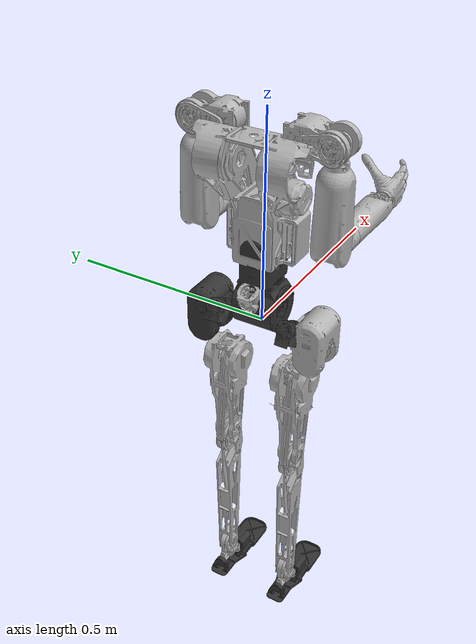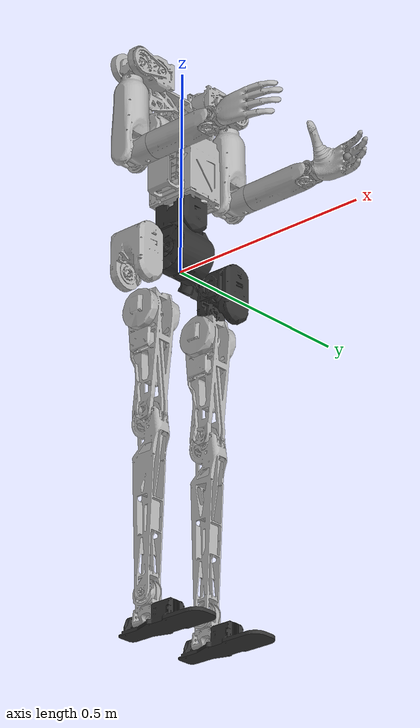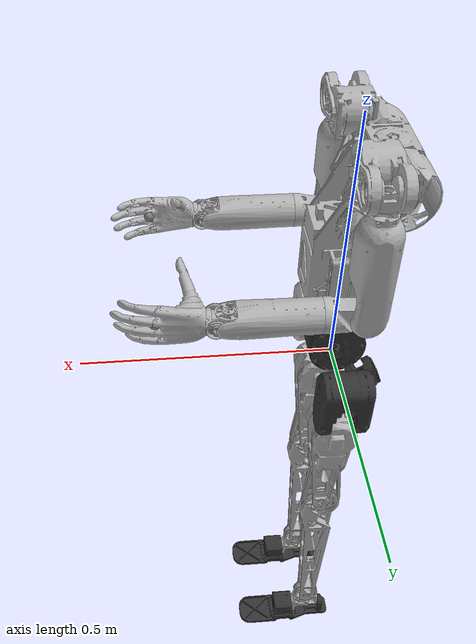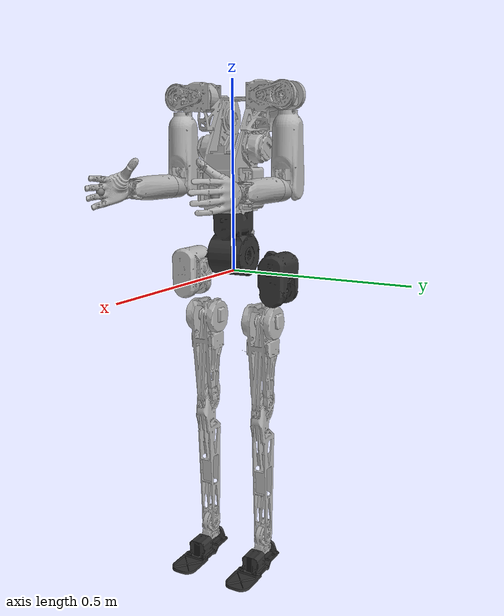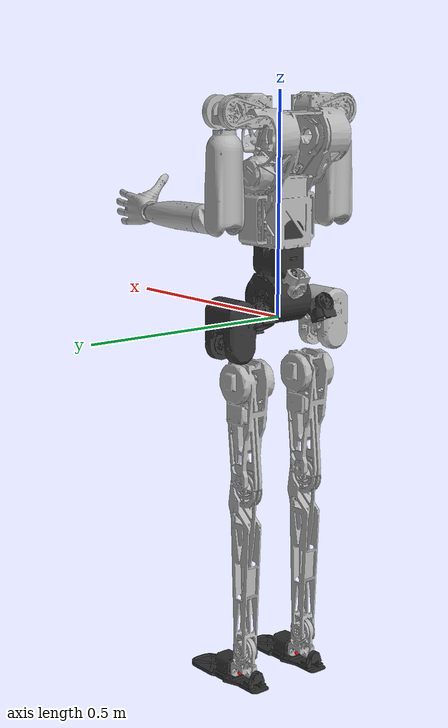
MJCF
<mujoco model="F3">
  <compiler angle="radian" meshdir="./meshes/" autolimits="true"/>
  <default>
    <default class="h1">
      <default class="visual">
        <geom type="mesh" density="0" material="silver" contype="0" conaffinity="0" group="2"/>
      </default>
      <default class="collision">
        <geom type="capsule" priority="1" condim="6" group="3"/>
        <default class="foot_capsule">
          <geom size="0.02" rgba="0.75294 0.75294 0.75294 1" />
        </default>
      </default>
      <site rgba="0.75294 0.75294 0.75294 1" group="5"/>
    </default>
  </default>

  <asset>
    <material name="silver" rgba="0.7 0.7 0.7 1"/>
    <material name="black" rgba="0.2 0.2 0.2 1"/>

    <mesh name="pelvis" file="pelvis.STL"/>
    <mesh name="left_hip_roll_link" file="left_hip_roll_link.STL"/>
    <mesh name="left_hip_pitch_link" file="left_hip_pitch_link.STL"/>
    <mesh name="left_hip_yaw_link" file="left_hip_yaw_link.STL"/>
    <mesh name="left_knee_link" file="left_knee_link.STL"/>
    <mesh name="left_ankle_pitch_link" file="left_ankle_pitch_link.STL"/>
    <mesh name="left_ankle_roll_link" file="left_ankle_roll_link.STL"/>
    <mesh name="right_hip_roll_link" file="right_hip_roll_link.STL"/>
    <mesh name="right_hip_pitch_link" file="right_hip_pitch_link.STL"/>
    <mesh name="right_hip_yaw_link" file="right_hip_yaw_link.STL"/>
    <mesh name="right_knee_link" file="right_knee_link.STL"/>
    <mesh name="right_ankle_pitch_link" file="right_ankle_pitch_link.STL"/>
    <mesh name="right_ankle_roll_link" file="right_ankle_roll_link.STL"/>
    <mesh name="waist_roll_link" file="waist_roll_link.STL"/>
    <mesh name="waist_yaw_link" file="waist_yaw_link.STL"/>
    <mesh name="torso_link" file="torso_link.STL"/>
    <mesh name="left_shoulder_pitch_link" file="left_shoulder_pitch_link.STL"/>
    <mesh name="left_shoulder_roll_link" file="left_shoulder_roll_link.STL"/>
    <mesh name="left_shoulder_yaw_link" file="left_shoulder_yaw_link.STL"/>
    <mesh name="left_elbow_link" file="left_elbow_link.STL"/>
    <mesh name="left_wrist_roll_link" file="left_wrist_roll_link.STL"/>
    <mesh name="left_wrist_yaw_link" file="left_wrist_yaw_link.STL"/>
    <mesh name="left_wrist_pitch_link" file="left_wrist_pitch_link.STL"/>
    <mesh name="left_hand_link" file="left_hand_link.STL"/>
    <mesh name="right_shoulder_pitch_link" file="right_shoulder_pitch_link.STL"/>
    <mesh name="right_shoulder_roll_link" file="right_shoulder_roll_link.STL"/>
    <mesh name="right_shoulder_yaw_link" file="right_shoulder_yaw_link.STL"/>
    <mesh name="right_elbow_link" file="right_elbow_link.STL"/>
    <mesh name="right_wrist_roll_link" file="right_wrist_roll_link.STL"/>
    <mesh name="right_wrist_yaw_link" file="right_wrist_yaw_link.STL"/>
    <mesh name="right_wrist_pitch_link" file="right_wrist_pitch_link.STL"/>
    <mesh name="right_hand_link" file="right_hand_link.STL"/>
    <mesh name="imu_in_plevis" file="imu_in_plevis.STL"/>
  </asset>

  <worldbody>
    <body name="pelvis">
      <light pos="0 0 2" mode="trackcom"/>
      <camera name="tracking" pos="1.734 -1.135 .35" xyaxes="0.552 0.834 -0.000 -0.170 0.112 0.979" mode="trackcom"/>
      <inertial pos="-0.069338 -8.37816e-05 0.0490071" quat="0.704017 0.70462 -0.0626257 0.0628377" mass="2.97466" diaginertia="0.0183033 0.0173058 0.00299041"/>
      <freejoint name="floating_base_joint"/>
      <geom class="visual" material="black" mesh="pelvis"/>
      <geom name="pelvis_collision" class="collision" type="sphere" size="0.05" pos="-0.05 0 0.07"/>
      <site name="imu_in_pelvis" size="0.005" pos="0. 0 -0.00"/>
      <body name="left_hip_roll_link" pos="-0.039404 0.09 0.02275" quat="0.965926 0 0.25882 0">
        <inertial pos="0.0409016 0.00104319 0.00055003" quat="0.520723 0.499404 0.484277 0.494893" mass="0.9975" diaginertia="0.00125597 0.00100421 0.00085418"/>
        <joint name="left_hip_roll_joint" pos="0 0 0" axis="1 0 0" range="-0.5236 1.5708" actuatorfrcrange="-80 80"/>
        <geom class="visual" material="black" mesh="left_hip_roll_link"/>
        <body name="left_hip_pitch_link" pos="0.0455 0 0" quat="0.965926 0 -0.25882 0">
          <inertial pos="0 -0.0070449 -0.026216" quat="0.549131 0.835736 -0.000185942 -4.2814e-05" mass="0.15722" diaginertia="0.0002124 0.000167258 0.000112552"/>
          <joint name="left_hip_pitch_joint" pos="0 0 0" axis="0 1 0" range="-2.0944 0.7854" actuatorfrcrange="-80 80"/>
          <geom class="visual" material="black" mesh="left_hip_pitch_link"/>
          <geom name="left_hip_collision" class="collision" size="0.045"  fromto="-0.0 0 0 -0.0 0 -0.07"/>
          <body name="left_hip_yaw_link" pos="0 0 -0.0512">
            <inertial pos="0.00020885 0.0040932 -0.155367" quat="0.999995 0.00315047 0.000136301 -0.000160339" mass="2.753" diaginertia="0.0200342 0.0192266 0.00270497"/>
            <joint name="left_hip_yaw_joint" pos="0 0 0" axis="0 0 1" range="-2.0944 2.0944" actuatorfrcrange="-80 80"/>
            <geom class="visual" mesh="left_hip_yaw_link"/>
            <geom name="left_thigh_collision" class="collision" size="0.045" fromto="-0.0 0 -0.10 -0.00 0 -0.28"/>
            <body name="left_knee_link" pos="0 0 -0.3338">
              <inertial pos="0.00321297 -0.00033233 -0.149586" quat="0.714954 -0.00597305 -0.00957519 0.699081" mass="0.667" diaginertia="0.0122657 0.012169 0.000326415"/>
              <joint name="left_knee_joint" pos="0 0 0" axis="0 1 0" range="-0.0174 2.2689" actuatorfrcrange="-120 120"/>
              <geom class="visual" mesh="left_knee_link"/>
              <geom name="left_shin_collision" class="collision" size="0.045" fromto="0.00 0 -0.02 -0.00 0 -0.37"/>
              <body name="left_ankle_pitch_link" pos="0 0 -0.39">
                <inertial pos="0.0024353 0.00106411 -0.0223825" quat="0.695038 0.0796828 0.0589487 0.712108" mass="0.2332" diaginertia="0.000242528 0.000178201 0.000102011"/>
                <joint name="left_ankle_pitch_joint" pos="0 0 0" axis="0 1 0" range="-1.2217 0.8726" actuatorfrcrange="-89 89"/>
                <geom class="visual" mesh="left_ankle_pitch_link"/>
                <body name="left_ankle_roll_link" pos="0 0 -0.058">
                  <inertial pos="0.0456341 0.00011511 -0.0101388" quat="0.00338288 0.704524 0.00331171 0.709664" mass="0.8432" diaginertia="0.00300156 0.00287386 0.000642355"/>
                  <joint name="left_ankle_roll_joint" pos="0 0 0" axis="1 0 0" range="-0.5236 0.5236" actuatorfrcrange="-12 12"/>
                  <geom class="visual" material="black" mesh="left_ankle_roll_link"/>
                  <geom name="left_foot1_collision" type="capsule" size="0.01" fromto="0.13 -0.036 -0.026 0.03 -0.036 -0.026" rgba="0.75294 0.75294 0.75294 1" group="3"/>
                  <geom name="left_foot2_collision" type="capsule" size="0.01" fromto="-0.055 -0.024 -0.026 0.145 -0.024 -0.026" rgba="0.75294 0.75294 0.75294 1" group="3"/>
                  <geom name="left_foot3_collision" type="capsule" size="0.01" fromto="-0.066 -0.012 -0.026 0.150 -0.012 -0.026" rgba="0.75294 0.75294 0.75294 1" group="3"/>
                  <geom name="left_foot4_collision" type="capsule" size="0.01" fromto="-0.066 0.000 -0.026 0.150 0.000 -0.026" rgba="0.75294 0.75294 0.75294 1" group="3"/>
                  <geom name="left_foot5_collision" type="capsule" size="0.01" fromto="-0.066 0.012 -0.026 0.150 0.012 -0.026" rgba="0.75294 0.75294 0.75294 1" group="3"/>
                  <geom name="left_foot6_collision" type="capsule" size="0.01" fromto="-0.055 0.024 -0.026 0.145 0.024 -0.026" rgba="0.75294 0.75294 0.75294 1" group="3"/>
                  <geom name="left_foot7_collision" type="capsule" size="0.01" fromto="0.13 0.036 -0.026 0.03 0.036 -0.026" rgba="0.75294 0.75294 0.75294 1" group="3"/>
                  <site name="left_foot" rgba="1 0 0 1" pos="0.02 0 -0.01"/>
                </body>
              </body>
            </body>
          </body>
        </body>
      </body>
      <body name="right_hip_roll_link" pos="-0.039404 -0.09 0.02275" quat="0.965926 0 0.25882 0">
        <inertial pos="0.0408989 -0.00103676 -0.00033948" quat="0.480766 0.498304 0.510828 0.509521" mass="0.9975" diaginertia="0.00125645 0.0010043 0.000854876"/>
        <joint name="right_hip_roll_joint" pos="0 0 0" axis="1 0 0" range="-1.5708 0.5236" actuatorfrcrange="-80 80"/>
        <geom class="visual" material="black" mesh="right_hip_roll_link"/>
        <body name="right_hip_pitch_link" pos="0.0455 0 0" quat="0.965926 0 -0.25882 0">
          <inertial pos="0 0.0070449 -0.026216" quat="0.835736 0.549131 -4.2814e-05 -0.000185942" mass="0.15722" diaginertia="0.0002124 0.000167258 0.000112552"/>
          <joint name="right_hip_pitch_joint" pos="0 0 0" axis="0 1 0" range="-2.0944 0.7854" actuatorfrcrange="-80 80"/>
          <geom class="visual" mesh="right_hip_pitch_link"/>
          <geom name="right_hip_collision" class="collision" size="0.045"  fromto="-0.0 0 0 -0.0 0 -0.07"/>
          <body name="right_hip_yaw_link" pos="0 0 -0.0512">
            <inertial pos="9.985e-05 0.00369698 -0.155367" quat="0.999997 0.000600878 0.0023731 0.000620391" mass="2.753" diaginertia="0.0200431 0.0192261 0.00271381"/>
            <joint name="right_hip_yaw_joint" pos="0 0 0" axis="0 0 1" range="-2.0944 2.0944" actuatorfrcrange="-80 80"/>
            <geom class="visual" mesh="right_hip_yaw_link"/>
            <geom name="right_thigh_collision" class="collision" size="0.045" fromto="-0.0 0 -0.10 -0.00 0 -0.28"/>
            <body name="right_knee_link" pos="0 0 -0.3338">
              <inertial pos="0.00321297 -0.00033233 -0.149586" quat="0.714954 -0.00597305 -0.00957519 0.699081" mass="0.667" diaginertia="0.0122657 0.012169 0.000326415"/>
              <joint name="right_knee_joint" pos="0 0 0" axis="0 1 0" range="-0.0174 2.2689" actuatorfrcrange="-120 120"/>
              <geom class="visual" mesh="right_knee_link"/>
              <geom name="right_shin_collision" class="collision" size="0.045" fromto="0.00 0 -0.02 -0.00 0 -0.37"/>
              <body name="right_ankle_pitch_link" pos="0 0 -0.39">
                <inertial pos="0.0024353 0.00106411 -0.0223825" quat="0.695038 0.0796828 0.0589487 0.712108" mass="0.2332" diaginertia="0.000242528 0.000178201 0.000102011"/>
                <joint name="right_ankle_pitch_joint" pos="0 0 0" axis="0 1 0" range="-1.2217 0.8726" actuatorfrcrange="-89 89"/>
                <geom class="visual" mesh="right_ankle_pitch_link"/>
                <body name="right_ankle_roll_link" pos="0 0 -0.058">
                  <inertial pos="0.0456341 0.00011511 -0.0101388" quat="0.00355511 0.704525 0.00308773 0.709663" mass="0.8432" diaginertia="0.00300156 0.00287386 0.000642354"/>
                  <geom class="visual" material="black" mesh="right_ankle_roll_link"/>
                  <joint name="right_ankle_roll_joint" pos="0 0 0" axis="1 0 0" range="-0.5236 0.5236" actuatorfrcrange="-12 12"/>
                  <geom name="right_foot1_collision" type="capsule" size="0.01" fromto="0.13 -0.036 -0.026 0.03 -0.036 -0.026" rgba="0.75294 0.75294 0.75294 1" group="3"/>
                  <geom name="right_foot2_collision" type="capsule" size="0.01" fromto="-0.055 -0.024 -0.026 0.145 -0.024 -0.026" rgba="0.75294 0.75294 0.75294 1" group="3"/>
                  <geom name="right_foot3_collision" type="capsule" size="0.01" fromto="-0.066 -0.012 -0.026 0.150 -0.012 -0.026" rgba="0.75294 0.75294 0.75294 1" group="3"/>
                  <geom name="right_foot4_collision" type="capsule" size="0.01" fromto="-0.066 0.000 -0.026 0.150 0.000 -0.026" rgba="0.75294 0.75294 0.75294 1" group="3"/>
                  <geom name="right_foot5_collision" type="capsule" size="0.01" fromto="-0.066 0.012 -0.026 0.150 0.012 -0.026" rgba="0.75294 0.75294 0.75294 1" group="3"/>
                  <geom name="right_foot6_collision" type="capsule" size="0.01" fromto="-0.055 0.024 -0.026 0.145 0.024 -0.026" rgba="0.75294 0.75294 0.75294 1" group="3"/>
                  <geom name="right_foot7_collision" type="capsule" size="0.01" fromto="0.13 0.036 -0.026 0.03 0.036 -0.026" rgba="0.75294 0.75294 0.75294 1" group="3"/>
                  <site name="right_foot" rgba="1 0 0 1" pos="0.02 0 -0.01"/>
                </body>
              </body>
            </body>
          </body>
        </body>
      </body>
      <body name="waist_roll_link" pos="-0.048914 0 0.079221" quat="0.965926 0 -0.25882 0">
        <inertial pos="0.0420426 0.00011154 -0.0238846" quat="-0.0292375 0.503197 -0.0178353 0.863493" mass="0.4147" diaginertia="0.00034756 0.000340578 0.000186183"/>
        <joint name="waist_roll_joint" pos="0 0 0" axis="1 0 0" range="-0.5236 0.5236" actuatorfrcrange="-80 80"/>
        <geom class="visual" mesh="waist_roll_link"/>
        <body name="waist_yaw_link" pos="0.068788 0 0" quat="0.965926 0 0.25882 0">
          <inertial pos="0 -0.00051453 -0.00747141" quat="0.582602 0.400719 -0.400719 0.582602" mass="0.0898" diaginertia="3.86111e-05 3.713e-05 3.49289e-05"/>
          <joint name="waist_yaw_joint" pos="0 0 0" axis="0 0 1" range="-1.5271 1.5271" actuatorfrcrange="-80 80"/>
          <geom class="visual" mesh="waist_yaw_link"/>
          <geom type="mesh" rgba="0.89804 0.91765 0.92941 1" mesh="waist_yaw_link"/>
          <body name="torso_link">
            <inertial pos="-0.00352174 0.000176161 0.169442" quat="0.999649 0.00071904 0.0264558 0.000870862" mass="6.756" diaginertia="0.0832461 0.0780293 0.0165986"/>
            <joint name="waist_pitch_joint" pos="0 0 0" axis="0 1 0" range="-0.5236 0.5236" actuatorfrcrange="-80 80"/>
            <geom class="visual" mesh="torso_link"/>
            <geom name="torso_collision" class="collision" size="0.09" fromto="0.01 0 0.08 0.01 0 0.30"/>
            <geom name="head_collision" class="collision" type="sphere" size="0.09" pos="0 0 .56"/>
            <body name="left_shoulder_pitch_link" pos="-0.015 0.05605 0.342">
              <inertial pos="5.543e-05 0.0554533 5.429e-05" quat="0.500477 0.499362 -0.499832 0.500328" mass="1.277" diaginertia="0.00194002 0.00178135 0.00103975"/>
              <joint name="left_shoulder_pitch_joint" pos="0 0 0" axis="0 1 0" range="-3.1416 2.0944" actuatorfrcrange="-48 48"/>
              <geom class="visual" mesh="left_shoulder_pitch_link"/>
              <body name="left_shoulder_roll_link" pos="0 0.1031 0">
                <inertial pos="0 -0.00015563 -0.00797243" quat="0.449914 0.545507 0.449914 0.545507" mass="0.229" diaginertia="7.05648e-05 6.60152e-05 5.784e-05"/>
                <joint name="left_shoulder_roll_joint" pos="0 0 0" axis="1 0 0" range="-0.2618 2.356" actuatorfrcrange="-84 84"/>
                <geom class="visual" mesh="left_shoulder_roll_link"/>
                <body name="left_shoulder_yaw_link">
                  <inertial pos="-7.8318e-05 0.001011 -0.12915" mass="1.194" diaginertia="0.00412845 0.00411827 0.00084103"/>
                  <joint name="left_shoulder_yaw_joint" pos="0 0 0" axis="0 0 1" range="-2.1817 2.1817" actuatorfrcrange="-84 84"/>
                  <geom class="visual" mesh="left_shoulder_yaw_link"/>
                  <geom name="left_shoulder_yaw_collision" class="collision" size="0.035" fromto="0 0 -0.05 0 0 -0.20"/>
                  <body name="left_elbow_link" pos="0 0 -0.2295">
                    <inertial pos="0.0167741 0 -0.00133301" quat="0 0.684589 0 0.728929" mass="0.185" diaginertia="0.000124726 0.00011358 7.98035e-05"/>
                    <joint name="left_elbow_joint" pos="0 0 0" axis="0 1 0" range="-0.7854 1.5707" actuatorfrcrange="-37 37"/>
                    <geom class="visual" mesh="left_elbow_link"/>
                    <geom name="left_elbow_yaw_collision" class="collision" size="0.035" fromto="-0.00 0 -0.0 0.185 0 -0.0"/>
                    <body name="left_wrist_roll_link">
                      <inertial pos="0.0985386 -0.00025438 -0.00071846" quat="0.49661 0.497949 0.510134 0.495166" mass="1.372" diaginertia="0.00443163 0.00434654 0.000486748"/>
                      <joint name="left_wrist_roll_joint" pos="0 0 0" axis="1 0 0" range="-1.5708 3.7524" actuatorfrcrange="-37 37"/>
                      <geom class="visual" mesh="left_wrist_roll_link"/>
                      <body name="left_wrist_yaw_link" pos="0.23 0 0">
                        <inertial pos="0.0075268 0 0" quat="0.5 0.5 -0.5 0.5" mass="0.042" diaginertia="1.443e-05 1.052e-05 7.83e-06"/>
                        <joint name="left_wrist_yaw_joint" pos="0 0 0" axis="0 0 1" range="-1.1344 0.6109" actuatorfrcrange="-20 20"/>
                        <geom class="visual" mesh="left_wrist_yaw_link"/>
                        <geom name="left_wrist_collision" class="collision" size="0.035" fromto="0.03 0 0 0.04 0 0"/>
                        <body name="left_wrist_pitch_link" pos="0.021 0 0">
                          <inertial pos="0.0745833 -0.00635348 0.00761055" quat="0.678574 0.334153 0.560893 0.336567" mass="0.53" diaginertia="0.00194365 0.00160851 0.000486104"/>
                          <joint name="left_wrist_pitch_joint" pos="0 0 0" axis="0 1 0" range="-0.5236 0.5236" actuatorfrcrange="-25 25"/>
                          <geom class="visual" mesh="left_wrist_pitch_link"/>
                          <geom class="visual" mesh="left_hand_link"/>
                          <site name="left_palm" pos="0.10 0 0" size="0.01"/>
                          <geom name="left_hand_collision" class="collision" size="0.03" rgba=".2 .6 .2 .2" fromto="0.06 0 0 0.15 -0.00 0"/>
                        </body>
                      </body>
                    </body>
                  </body>
                </body>
              </body>
            </body>
            <body name="right_shoulder_pitch_link" pos="-0.015 -0.05605 0.342">
              <inertial pos="0.00015543 -0.0554533 -5.429e-05" quat="0.500328 0.499832 -0.499362 0.500477" mass="1.277" diaginertia="0.00194002 0.00178135 0.00103975"/>
              <joint name="right_shoulder_pitch_joint" pos="0 0 0" axis="0 1 0" range="-3.1416 2.0944" actuatorfrcrange="-48 48"/>
              <geom class="visual" mesh="right_shoulder_pitch_link"/>
              <body name="right_shoulder_roll_link" pos="0 -0.1031 0">
                <inertial pos="0 -0.00015563 -0.00797243" quat="0.449914 0.545507 0.449914 0.545507" mass="0.229" diaginertia="7.05648e-05 6.60152e-05 5.784e-05"/>
                <joint name="right_shoulder_roll_joint" pos="0 0 0" axis="1 0 0" range="-2.356 0.2618" actuatorfrcrange="-84 84"/>
                <geom class="visual" mesh="right_shoulder_roll_link"/>
                <body name="right_shoulder_yaw_link">
                  <inertial pos="-7.8318e-05 0.001011 -0.12915" mass="1.194" diaginertia="0.00412845 0.00411827 0.00084103"/>
                  <joint name="right_shoulder_yaw_joint" pos="0 0 0" axis="0 0 1" range="-2.1817 2.1817" actuatorfrcrange="-84 84"/>
                  <geom class="visual" mesh="right_shoulder_yaw_link"/>
                  <geom name="right_shoulder_yaw_collision" class="collision" size="0.035" fromto="0 0 -0.05 0 0 -0.20"/>
                  <body name="right_elbow_link" pos="0 0 -0.2295">
                    <inertial pos="0.0167741 0 -0.00133301" quat="0 0.684589 0 0.728929" mass="0.185" diaginertia="0.000124726 0.00011358 7.98035e-05"/>
                    <joint name="right_elbow_joint" pos="0 0 0" axis="0 1 0" range="-0.6981 1.5707" actuatorfrcrange="-37 37"/>
                    <geom class="visual" mesh="right_elbow_link"/>
                    <geom name="right_elbow_yaw_collision" class="collision" size="0.035" fromto="-0.00 0 -0.0 0.185 0 -0.0"/>
                    <body name="right_wrist_roll_link">
                      <inertial pos="0.0985386 -0.00025438 -0.00071846" quat="0.49661 0.497949 0.510134 0.495166" mass="1.372" diaginertia="0.00443163 0.00434654 0.000486748"/>
                      <joint name="right_wrist_roll_joint" pos="0 0 0" axis="1 0 0" range="-3.7524 1.5708" actuatorfrcrange="-37 37"/>
                      <geom class="visual" mesh="right_wrist_roll_link"/>
                      <body name="right_wrist_yaw_link" pos="0.23 0 0">
                        <inertial pos="0.0075268 0 0" quat="0.5 0.5 -0.5 0.5" mass="0.042" diaginertia="1.443e-05 1.052e-05 7.83e-06"/>
                        <joint name="right_wrist_yaw_joint" pos="0 0 0" axis="0 0 1" range="-0.6109 1.1344" actuatorfrcrange="-20 20"/>
                        <geom class="visual" mesh="right_wrist_yaw_link"/>
                        <geom name="right_wrist_collision" class="collision" size="0.035" fromto="0.03 0 0 0.04 0 0"/>
                        <body name="right_wrist_pitch_link" pos="0.021 0 0">
                          <inertial pos="0.0745935 0.00622963 0.00761411" quat="0.335443 0.560268 0.335448 0.679009" mass="0.53" diaginertia="0.00194428 0.00160939 0.000486062"/>
                          <joint name="right_wrist_pitch_joint" pos="0 0 0" axis="0 1 0" range="-0.5236 0.5236" actuatorfrcrange="-25 25"/>
                          <geom class="visual" mesh="right_wrist_pitch_link"/>
                          <geom class="visual" mesh="right_hand_link"/>
                          <site name="right_palm" pos="0.10 0 0" size="0.01"/>
                          <geom name="right_hand_collision" class="collision" size="0.03" rgba=".2 .6 .2 .2" fromto="0.06 0 0 0.15 -0.00 0"/>
                        </body>
                      </body>
                    </body>
                  </body>
                </body>
              </body>
            </body>
          </body>
        </body>
      </body>
    </body>
  </worldbody>
  <sensor>
    <gyro name="imu_ang_vel" site="imu_in_pelvis"/>
    <velocimeter name="imu_lin_vel" site="imu_in_pelvis"/>
    <accelerometer name="imu_lin_acc" site="imu_in_pelvis"/>
    <subtreeangmom name="root_angmom" body="pelvis"/>
  </sensor>
</mujoco>
